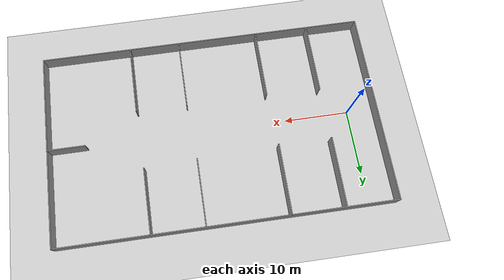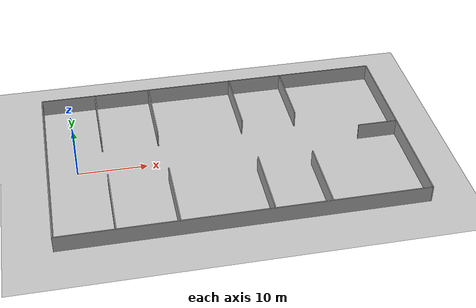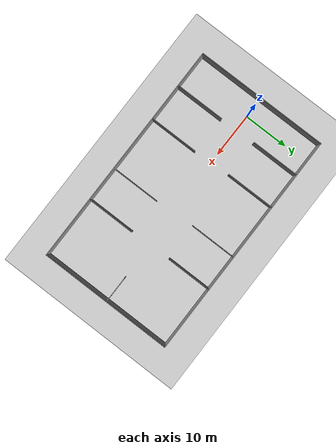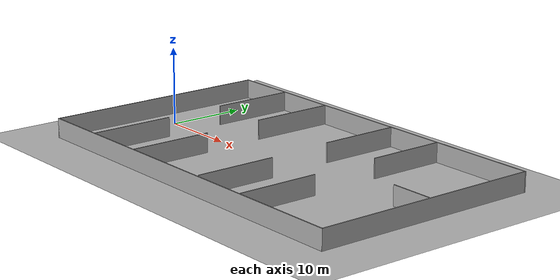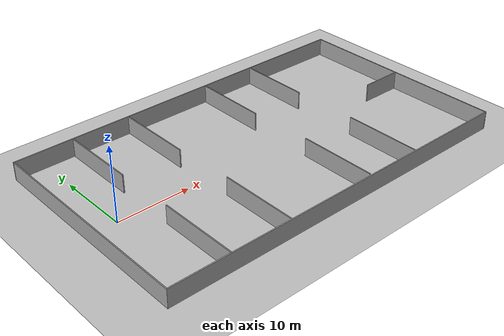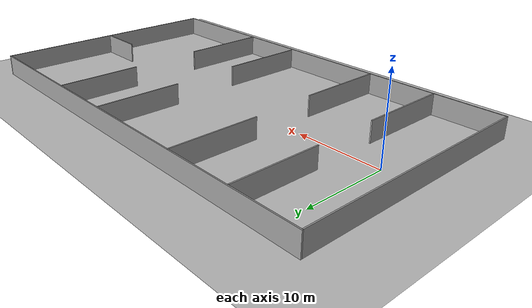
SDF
<sdf version="1.7">
 <world name="default">
  <light name="sun" type="directional">
   <pose>0 0 10 0 -0 0</pose>
   <diffuse>0.8 0.8 0.8 1</diffuse>
   <specular>0.2 0.2 0.2 1</specular>
   <attenuation>
    <range>1000</range>
    <constant>0.9</constant>
    <linear>0.01</linear>
    <quadratic>0.001</quadratic>
   </attenuation>
   <direction>-0.5 0.1 -0.9</direction>
   <spot><inner_angle>0</inner_angle><outer_angle>0</outer_angle><falloff>0</falloff></spot>
  </light>
  <model name="ground_plane">
   <static>1</static>
   <link name="link">
    <collision name="collision">
     <geometry><plane><normal>0 0 1</normal><size>100 100</size></plane></geometry>
     <surface>
      <contact><collide_bitmask>65535</collide_bitmask></contact>
      <friction><ode><mu>100</mu><mu2>50</mu2></ode></friction>
     </surface>
    </collision>
    <visual name="visual">
     <cast_shadows>0</cast_shadows>
     <geometry><plane><normal>0 0 1</normal><size>100 100</size></plane></geometry>
     <material>
      <script><uri>file://media/materials/scripts/gazebo.material</uri><name>Gazebo/Grey</name></script>
     </material>
    </visual>
   </link>
  </model>
  <gravity>0 0 -9.8</gravity>
  <magnetic_field>6e-06 2.3e-05 -4.2e-05</magnetic_field>
  <atmosphere type="adiabatic"/>
  <physics type="ode">
   <max_step_size>0.001</max_step_size>
   <real_time_factor>1</real_time_factor>
   <real_time_update_rate>1000</real_time_update_rate>
  </physics>
  <scene><ambient>0.4 0.4 0.4 1</ambient><background>0.7 0.7 0.7 1</background><shadows>1</shadows></scene>
  <spherical_coordinates>
   <surface_model>EARTH_WGS84</surface_model>
   <latitude_deg>0</latitude_deg>
   <longitude_deg>0</longitude_deg>
   <elevation>0</elevation>
   <heading_deg>0</heading_deg>
  </spherical_coordinates>
  <model name="olha_world">
   <pose>21.4734 0.155353 0 0 -0 0</pose>
   <link name="Wall_12">
    <collision name="Wall_12_Collision">
     <geometry><box><size>11 0.15 2.5</size></box></geometry>
     <pose>0 0 1.25 0 -0 0</pose>
    </collision>
    <visual name="Wall_12_Visual">
     <pose>0 0 1.25 0 -0 0</pose>
     <geometry><box><size>11 0.15 2.5</size></box></geometry>
     <material>
      <script><uri>file://media/materials/scripts/gazebo.material</uri><name>Gazebo/Grey</name></script>
      <ambient>1 1 1 1</ambient>
     </material>
     <meta><layer>0</layer></meta>
    </visual>
    <pose>-17.3885 -9.38848 0 0 -0 1.5708</pose>
   </link>
   <link name="Wall_14">
    <collision name="Wall_14_Collision">
     <geometry><box><size>10.75 0.15 2.5</size></box></geometry>
     <pose>0 0 1.25 0 -0 0</pose>
    </collision>
    <visual name="Wall_14_Visual">
     <pose>0 0 1.25 0 -0 0</pose>
     <geometry><box><size>10.75 0.15 2.5</size></box></geometry>
     <material>
      <script><uri>file://media/materials/scripts/gazebo.material</uri><name>Gazebo/Grey</name></script>
      <ambient>1 1 1 1</ambient>
     </material>
     <meta><layer>0</layer></meta>
    </visual>
    <pose>-8.95625 -9.51038 0 0 -0 -1.5708</pose>
   </link>
   <link name="Wall_2">
    <collision name="Wall_2_Collision">
     <geometry><box><size>30 0.15 2.5</size></box></geometry>
     <pose>0 0 1.25 0 -0 0</pose>
    </collision>
    <visual name="Wall_2_Visual">
     <pose>0 0 1.25 0 -0 0</pose>
     <geometry><box><size>30 0.15 2.5</size></box></geometry>
     <material>
      <script><uri>file://media/materials/scripts/gazebo.material</uri><name>Gazebo/Grey</name></script>
      <ambient>1 1 1 1</ambient>
     </material>
     <meta><layer>0</layer></meta>
    </visual>
    <pose>-25.55 0 0 0 -0 -1.5708</pose>
   </link>
   <link name="Wall_22">
    <collision name="Wall_22_Collision">
     <geometry><box><size>10.6418 0.15 2.5</size></box></geometry>
     <pose>0 0 1.25 0 -0 0</pose>
    </collision>
    <visual name="Wall_22_Visual">
     <pose>0 0 1.25 0 -0 0</pose>
     <geometry><box><size>10.6418 0.15 2.5</size></box></geometry>
     <material>
      <script><uri>file://media/materials/scripts/gazebo.material</uri><name>Gazebo/Grey</name></script>
      <ambient>1 1 1 1</ambient>
     </material>
     <meta><layer>0</layer></meta>
    </visual>
    <pose>-17.5655 9.47716 0 0 -0 -1.5708</pose>
   </link>
   <link name="Wall_24">
    <collision name="Wall_24_Collision">
     <geometry><box><size>10.8918 0.15 2.5</size></box></geometry>
     <pose>0 0 1.25 0 -0 0</pose>
    </collision>
    <visual name="Wall_24_Visual">
     <pose>0 0 1.25 0 -0 0</pose>
     <geometry><box><size>10.8918 0.15 2.5</size></box></geometry>
     <material>
      <script><uri>file://media/materials/scripts/gazebo.material</uri><name>Gazebo/Grey</name></script>
      <ambient>1 1 1 1</ambient>
     </material>
     <meta><layer>0</layer></meta>
    </visual>
    <pose>-9.38319 9.51986 0 0 -0 1.5708</pose>
   </link>
   <link name="Wall_28">
    <collision name="Wall_28_Collision">
     <geometry><box><size>10 0.15 2.5</size></box></geometry>
     <pose>0 0 1.25 0 -0 0</pose>
    </collision>
    <visual name="Wall_28_Visual">
     <pose>0 0 1.25 0 -0 0</pose>
     <geometry><box><size>10 0.15 2.5</size></box></geometry>
     <material>
      <script><uri>file://media/materials/scripts/gazebo.material</uri><name>Gazebo/Grey</name></script>
      <ambient>1 1 1 1</ambient>
     </material>
     <meta><layer>0</layer></meta>
    </visual>
    <pose>11.3109 9.9201 0 0 -0 1.5708</pose>
   </link>
   <link name="Wall_3">
    <collision name="Wall_3_Collision">
     <geometry><box><size>51.25 0.15 2.5</size></box></geometry>
     <pose>0 0 1.25 0 -0 0</pose>
    </collision>
    <visual name="Wall_3_Visual">
     <pose>0 0 1.25 0 -0 0</pose>
     <geometry><box><size>51.25 0.15 2.5</size></box></geometry>
     <material>
      <script><uri>file://media/materials/scripts/gazebo.material</uri><name>Gazebo/Grey</name></script>
      <ambient>1 1 1 1</ambient>
     </material>
     <meta><layer>0</layer></meta>
    </visual>
    <pose>0 -14.925 0 0 -0 0</pose>
   </link>
   <link name="Wall_30">
    <collision name="Wall_30_Collision">
     <geometry><box><size>10.2534 0.15 2.5</size></box></geometry>
     <pose>0 0 1.25 0 -0 0</pose>
    </collision>
    <visual name="Wall_30_Visual">
     <pose>0 0 1.25 0 -0 0</pose>
     <geometry><box><size>10.2534 0.15 2.5</size></box></geometry>
     <material>
      <script><uri>file://media/materials/scripts/gazebo.material</uri><name>Gazebo/Grey</name></script>
      <ambient>1 1 1 1</ambient>
     </material>
     <meta><layer>0</layer></meta>
    </visual>
    <pose>3.20948 9.6868 0 0 -0 -1.5708</pose>
   </link>
   <link name="Wall_32">
    <collision name="Wall_32_Collision">
     <geometry><box><size>10.5 0.15 2.5</size></box></geometry>
     <pose>0 0 1.25 0 -0 0</pose>
    </collision>
    <visual name="Wall_32_Visual">
     <pose>0 0 1.25 0 -0 0</pose>
     <geometry><box><size>10.5 0.15 2.5</size></box></geometry>
     <material>
      <script><uri>file://media/materials/scripts/gazebo.material</uri><name>Gazebo/Grey</name></script>
      <ambient>1 1 1 1</ambient>
     </material>
     <meta><layer>0</layer></meta>
    </visual>
    <pose>3.6911 -9.36613 0 0 -0 1.5708</pose>
   </link>
   <link name="Wall_34">
    <collision name="Wall_34_Collision">
     <geometry><box><size>10.75 0.15 2.5</size></box></geometry>
     <pose>0 0 1.25 0 -0 0</pose>
    </collision>
    <visual name="Wall_34_Visual">
     <pose>0 0 1.25 0 -0 0</pose>
     <geometry><box><size>10.75 0.15 2.5</size></box></geometry>
     <material>
      <script><uri>file://media/materials/scripts/gazebo.material</uri><name>Gazebo/Grey</name></script>
      <ambient>1 1 1 1</ambient>
     </material>
     <meta><layer>0</layer></meta>
    </visual>
    <pose>11.5764 -9.6153 0 0 -0 1.5708</pose>
   </link>
   <link name="Wall_36">
    <collision name="Wall_36_Collision">
     <geometry><box><size>5.75 0.15 2.5</size></box></geometry>
     <pose>0 0 1.25 0 -0 0</pose>
    </collision>
    <visual name="Wall_36_Visual">
     <pose>0 0 1.25 0 -0 0</pose>
     <geometry><box><size>5.75 0.15 2.5</size></box></geometry>
     <material>
      <script><uri>file://media/materials/scripts/gazebo.material</uri><name>Gazebo/Grey</name></script>
      <ambient>1 1 1 1</ambient>
     </material>
     <meta><layer>0</layer></meta>
    </visual>
    <pose>22.6356 0.244967 0 0 -0 3.14159</pose>
   </link>
   <link name="Wall_4">
    <collision name="Wall_4_Collision">
     <geometry><box><size>30 0.15 2.5</size></box></geometry>
     <pose>0 0 1.25 0 -0 0</pose>
    </collision>
    <visual name="Wall_4_Visual">
     <pose>0 0 1.25 0 -0 0</pose>
     <geometry><box><size>30 0.15 2.5</size></box></geometry>
     <material>
      <script><uri>file://media/materials/scripts/gazebo.material</uri><name>Gazebo/Grey</name></script>
      <ambient>1 1 1 1</ambient>
     </material>
     <meta><layer>0</layer></meta>
    </visual>
    <pose>25.55 0 0 0 -0 1.5708</pose>
   </link>
   <link name="Wall_5">
    <collision name="Wall_5_Collision">
     <geometry><box><size>51.25 0.15 2.5</size></box></geometry>
     <pose>0 0 1.25 0 -0 0</pose>
    </collision>
    <visual name="Wall_5_Visual">
     <pose>0 0 1.25 0 -0 0</pose>
     <geometry><box><size>51.25 0.15 2.5</size></box></geometry>
     <material>
      <script><uri>file://media/materials/scripts/gazebo.material</uri><name>Gazebo/Grey</name></script>
      <ambient>1 1 1 1</ambient>
     </material>
     <meta><layer>0</layer></meta>
    </visual>
    <pose>0 14.925 0 0 -0 3.14159</pose>
   </link>
   <static>1</static>
  </model>
 </world>
</sdf>
